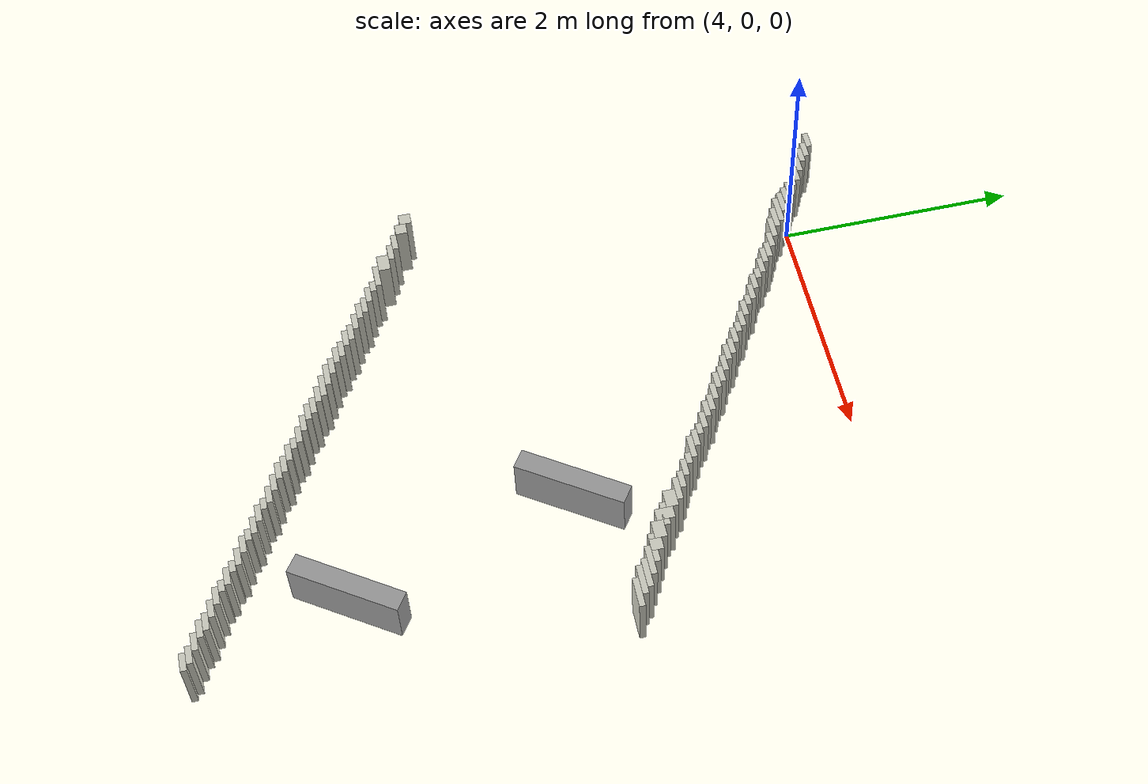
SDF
<sdf version="1.7">
 <world name="my_map_world">
  <model name="wall_92">
   <static>1</static>
   <pose>3.375 0.325 0.25 0 -0 0</pose>
   <link name="link">
    <collision name="collision"><geometry><box><size>0.15 0.05 0.5</size></box></geometry></collision>
    <visual name="visual">
     <geometry><box><size>0.15 0.05 0.5</size></box></geometry>
     <material>
      <script><uri>file://media/materials/scripts/gazebo.material</uri><name>Gazebo/PaintedWall</name></script>
     </material>
    </visual>
   </link>
  </model>
  <model name="wall_94">
   <static>1</static>
   <pose>3.475 0.275 0.25 0 -0 0</pose>
   <link name="link">
    <collision name="collision"><geometry><box><size>0.15 0.05 0.5</size></box></geometry></collision>
    <visual name="visual">
     <geometry><box><size>0.15 0.05 0.5</size></box></geometry>
     <material>
      <script><uri>file://media/materials/scripts/gazebo.material</uri><name>Gazebo/PaintedWall</name></script>
     </material>
    </visual>
   </link>
  </model>
  <model name="wall_96">
   <static>1</static>
   <pose>3.525 0.225 0.25 0 -0 0</pose>
   <link name="link">
    <collision name="collision"><geometry><box><size>0.15 0.05 0.5</size></box></geometry></collision>
    <visual name="visual">
     <geometry><box><size>0.15 0.05 0.5</size></box></geometry>
     <material>
      <script><uri>file://media/materials/scripts/gazebo.material</uri><name>Gazebo/PaintedWall</name></script>
     </material>
    </visual>
   </link>
  </model>
  <model name="wall_99">
   <static>1</static>
   <pose>3.625 0.175 0.25 0 -0 0</pose>
   <link name="link">
    <collision name="collision"><geometry><box><size>0.15 0.05 0.5</size></box></geometry></collision>
    <visual name="visual">
     <geometry><box><size>0.15 0.05 0.5</size></box></geometry>
     <material>
      <script><uri>file://media/materials/scripts/gazebo.material</uri><name>Gazebo/PaintedWall</name></script>
     </material>
    </visual>
   </link>
  </model>
  <model name="wall_101">
   <static>1</static>
   <pose>3.725 0.125 0.25 0 -0 0</pose>
   <link name="link">
    <collision name="collision"><geometry><box><size>0.15 0.05 0.5</size></box></geometry></collision>
    <visual name="visual">
     <geometry><box><size>0.15 0.05 0.5</size></box></geometry>
     <material>
      <script><uri>file://media/materials/scripts/gazebo.material</uri><name>Gazebo/PaintedWall</name></script>
     </material>
    </visual>
   </link>
  </model>
  <model name="wall_103">
   <static>1</static>
   <pose>3.8 0.075 0.25 0 -0 0</pose>
   <link name="link">
    <collision name="collision"><geometry><box><size>0.1 0.05 0.5</size></box></geometry></collision>
    <visual name="visual">
     <geometry><box><size>0.1 0.05 0.5</size></box></geometry>
     <material>
      <script><uri>file://media/materials/scripts/gazebo.material</uri><name>Gazebo/PaintedWall</name></script>
     </material>
    </visual>
   </link>
  </model>
  <model name="wall_106">
   <static>1</static>
   <pose>3.875 0.025 0.25 0 -0 0</pose>
   <link name="link">
    <collision name="collision"><geometry><box><size>0.15 0.05 0.5</size></box></geometry></collision>
    <visual name="visual">
     <geometry><box><size>0.15 0.05 0.5</size></box></geometry>
     <material>
      <script><uri>file://media/materials/scripts/gazebo.material</uri><name>Gazebo/PaintedWall</name></script>
     </material>
    </visual>
   </link>
  </model>
  <model name="wall_109">
   <static>1</static>
   <pose>3.925 -0.025 0.25 0 -0 0</pose>
   <link name="link">
    <collision name="collision"><geometry><box><size>0.15 0.05 0.5</size></box></geometry></collision>
    <visual name="visual">
     <geometry><box><size>0.15 0.05 0.5</size></box></geometry>
     <material>
      <script><uri>file://media/materials/scripts/gazebo.material</uri><name>Gazebo/PaintedWall</name></script>
     </material>
    </visual>
   </link>
  </model>
  <model name="wall_112">
   <static>1</static>
   <pose>4 -0.075 0.25 0 -0 0</pose>
   <link name="link">
    <collision name="collision"><geometry><box><size>0.2 0.05 0.5</size></box></geometry></collision>
    <visual name="visual">
     <geometry><box><size>0.2 0.05 0.5</size></box></geometry>
     <material>
      <script><uri>file://media/materials/scripts/gazebo.material</uri><name>Gazebo/PaintedWall</name></script>
     </material>
    </visual>
   </link>
  </model>
  <model name="wall_115">
   <static>1</static>
   <pose>4.075 -0.125 0.25 0 -0 0</pose>
   <link name="link">
    <collision name="collision"><geometry><box><size>0.25 0.05 0.5</size></box></geometry></collision>
    <visual name="visual">
     <geometry><box><size>0.25 0.05 0.5</size></box></geometry>
     <material>
      <script><uri>file://media/materials/scripts/gazebo.material</uri><name>Gazebo/PaintedWall</name></script>
     </material>
    </visual>
   </link>
  </model>
  <model name="wall_118">
   <static>1</static>
   <pose>4.15 -0.175 0.25 0 -0 0</pose>
   <link name="link">
    <collision name="collision"><geometry><box><size>0.2 0.05 0.5</size></box></geometry></collision>
    <visual name="visual">
     <geometry><box><size>0.2 0.05 0.5</size></box></geometry>
     <material>
      <script><uri>file://media/materials/scripts/gazebo.material</uri><name>Gazebo/PaintedWall</name></script>
     </material>
    </visual>
   </link>
  </model>
  <model name="wall_121">
   <static>1</static>
   <pose>4.25 -0.225 0.25 0 -0 0</pose>
   <link name="link">
    <collision name="collision"><geometry><box><size>0.2 0.05 0.5</size></box></geometry></collision>
    <visual name="visual">
     <geometry><box><size>0.2 0.05 0.5</size></box></geometry>
     <material>
      <script><uri>file://media/materials/scripts/gazebo.material</uri><name>Gazebo/PaintedWall</name></script>
     </material>
    </visual>
   </link>
  </model>
  <model name="wall_123">
   <static>1</static>
   <pose>4.375 -0.275 0.25 0 -0 0</pose>
   <link name="link">
    <collision name="collision"><geometry><box><size>0.15 0.05 0.5</size></box></geometry></collision>
    <visual name="visual">
     <geometry><box><size>0.15 0.05 0.5</size></box></geometry>
     <material>
      <script><uri>file://media/materials/scripts/gazebo.material</uri><name>Gazebo/PaintedWall</name></script>
     </material>
    </visual>
   </link>
  </model>
  <model name="wall_125">
   <static>1</static>
   <pose>4.475 -0.325 0.25 0 -0 0</pose>
   <link name="link">
    <collision name="collision"><geometry><box><size>0.15 0.05 0.5</size></box></geometry></collision>
    <visual name="visual">
     <geometry><box><size>0.15 0.05 0.5</size></box></geometry>
     <material>
      <script><uri>file://media/materials/scripts/gazebo.material</uri><name>Gazebo/PaintedWall</name></script>
     </material>
    </visual>
   </link>
  </model>
  <model name="wall_128">
   <static>1</static>
   <pose>4.525 -0.375 0.25 0 -0 0</pose>
   <link name="link">
    <collision name="collision"><geometry><box><size>0.15 0.05 0.5</size></box></geometry></collision>
    <visual name="visual">
     <geometry><box><size>0.15 0.05 0.5</size></box></geometry>
     <material>
      <script><uri>file://media/materials/scripts/gazebo.material</uri><name>Gazebo/PaintedWall</name></script>
     </material>
    </visual>
   </link>
  </model>
  <model name="wall_130">
   <static>1</static>
   <pose>4.625 -0.425 0.25 0 -0 0</pose>
   <link name="link">
    <collision name="collision"><geometry><box><size>0.15 0.05 0.5</size></box></geometry></collision>
    <visual name="visual">
     <geometry><box><size>0.15 0.05 0.5</size></box></geometry>
     <material>
      <script><uri>file://media/materials/scripts/gazebo.material</uri><name>Gazebo/PaintedWall</name></script>
     </material>
    </visual>
   </link>
  </model>
  <model name="wall_132">
   <static>1</static>
   <pose>4.7 -0.475 0.25 0 -0 0</pose>
   <link name="link">
    <collision name="collision"><geometry><box><size>0.1 0.05 0.5</size></box></geometry></collision>
    <visual name="visual">
     <geometry><box><size>0.1 0.05 0.5</size></box></geometry>
     <material>
      <script><uri>file://media/materials/scripts/gazebo.material</uri><name>Gazebo/PaintedWall</name></script>
     </material>
    </visual>
   </link>
  </model>
  <model name="wall_134">
   <static>1</static>
   <pose>4.775 -0.525 0.25 0 -0 0</pose>
   <link name="link">
    <collision name="collision"><geometry><box><size>0.15 0.05 0.5</size></box></geometry></collision>
    <visual name="visual">
     <geometry><box><size>0.15 0.05 0.5</size></box></geometry>
     <material>
      <script><uri>file://media/materials/scripts/gazebo.material</uri><name>Gazebo/PaintedWall</name></script>
     </material>
    </visual>
   </link>
  </model>
  <model name="wall_136">
   <static>1</static>
   <pose>4.875 -0.575 0.25 0 -0 0</pose>
   <link name="link">
    <collision name="collision"><geometry><box><size>0.15 0.05 0.5</size></box></geometry></collision>
    <visual name="visual">
     <geometry><box><size>0.15 0.05 0.5</size></box></geometry>
     <material>
      <script><uri>file://media/materials/scripts/gazebo.material</uri><name>Gazebo/PaintedWall</name></script>
     </material>
    </visual>
   </link>
  </model>
  <model name="wall_138">
   <static>1</static>
   <pose>4.95 -0.625 0.25 0 -0 0</pose>
   <link name="link">
    <collision name="collision"><geometry><box><size>0.1 0.05 0.5</size></box></geometry></collision>
    <visual name="visual">
     <geometry><box><size>0.1 0.05 0.5</size></box></geometry>
     <material>
      <script><uri>file://media/materials/scripts/gazebo.material</uri><name>Gazebo/PaintedWall</name></script>
     </material>
    </visual>
   </link>
  </model>
  <model name="wall_140">
   <static>1</static>
   <pose>5.025 -0.675 0.25 0 -0 0</pose>
   <link name="link">
    <collision name="collision"><geometry><box><size>0.15 0.05 0.5</size></box></geometry></collision>
    <visual name="visual">
     <geometry><box><size>0.15 0.05 0.5</size></box></geometry>
     <material>
      <script><uri>file://media/materials/scripts/gazebo.material</uri><name>Gazebo/PaintedWall</name></script>
     </material>
    </visual>
   </link>
  </model>
  <model name="wall_142">
   <static>1</static>
   <pose>5.125 -0.725 0.25 0 -0 0</pose>
   <link name="link">
    <collision name="collision"><geometry><box><size>0.15 0.05 0.5</size></box></geometry></collision>
    <visual name="visual">
     <geometry><box><size>0.15 0.05 0.5</size></box></geometry>
     <material>
      <script><uri>file://media/materials/scripts/gazebo.material</uri><name>Gazebo/PaintedWall</name></script>
     </material>
    </visual>
   </link>
  </model>
  <model name="wall_144">
   <static>1</static>
   <pose>5.2 -0.775 0.25 0 -0 0</pose>
   <link name="link">
    <collision name="collision"><geometry><box><size>0.1 0.05 0.5</size></box></geometry></collision>
    <visual name="visual">
     <geometry><box><size>0.1 0.05 0.5</size></box></geometry>
     <material>
      <script><uri>file://media/materials/scripts/gazebo.material</uri><name>Gazebo/PaintedWall</name></script>
     </material>
    </visual>
   </link>
  </model>
  <model name="wall_146">
   <static>1</static>
   <pose>5.275 -0.825 0.25 0 -0 0</pose>
   <link name="link">
    <collision name="collision"><geometry><box><size>0.15 0.05 0.5</size></box></geometry></collision>
    <visual name="visual">
     <geometry><box><size>0.15 0.05 0.5</size></box></geometry>
     <material>
      <script><uri>file://media/materials/scripts/gazebo.material</uri><name>Gazebo/PaintedWall</name></script>
     </material>
    </visual>
   </link>
  </model>
  <model name="wall_148">
   <static>1</static>
   <pose>5.375 -0.875 0.25 0 -0 0</pose>
   <link name="link">
    <collision name="collision"><geometry><box><size>0.15 0.05 0.5</size></box></geometry></collision>
    <visual name="visual">
     <geometry><box><size>0.15 0.05 0.5</size></box></geometry>
     <material>
      <script><uri>file://media/materials/scripts/gazebo.material</uri><name>Gazebo/PaintedWall</name></script>
     </material>
    </visual>
   </link>
  </model>
  <model name="wall_150">
   <static>1</static>
   <pose>5.425 -0.925 0.25 0 -0 0</pose>
   <link name="link">
    <collision name="collision"><geometry><box><size>0.15 0.05 0.5</size></box></geometry></collision>
    <visual name="visual">
     <geometry><box><size>0.15 0.05 0.5</size></box></geometry>
     <material>
      <script><uri>file://media/materials/scripts/gazebo.material</uri><name>Gazebo/PaintedWall</name></script>
     </material>
    </visual>
   </link>
  </model>
  <model name="wall_152">
   <static>1</static>
   <pose>5.525 -0.975 0.25 0 -0 0</pose>
   <link name="link">
    <collision name="collision"><geometry><box><size>0.15 0.05 0.5</size></box></geometry></collision>
    <visual name="visual">
     <geometry><box><size>0.15 0.05 0.5</size></box></geometry>
     <material>
      <script><uri>file://media/materials/scripts/gazebo.material</uri><name>Gazebo/PaintedWall</name></script>
     </material>
    </visual>
   </link>
  </model>
  <model name="wall_154">
   <static>1</static>
   <pose>5.625 -1.025 0.25 0 -0 0</pose>
   <link name="link">
    <collision name="collision"><geometry><box><size>0.15 0.05 0.5</size></box></geometry></collision>
    <visual name="visual">
     <geometry><box><size>0.15 0.05 0.5</size></box></geometry>
     <material>
      <script><uri>file://media/materials/scripts/gazebo.material</uri><name>Gazebo/PaintedWall</name></script>
     </material>
    </visual>
   </link>
  </model>
  <model name="wall_156">
   <static>1</static>
   <pose>5.675 -1.075 0.25 0 -0 0</pose>
   <link name="link">
    <collision name="collision"><geometry><box><size>0.15 0.05 0.5</size></box></geometry></collision>
    <visual name="visual">
     <geometry><box><size>0.15 0.05 0.5</size></box></geometry>
     <material>
      <script><uri>file://media/materials/scripts/gazebo.material</uri><name>Gazebo/PaintedWall</name></script>
     </material>
    </visual>
   </link>
  </model>
  <model name="wall_158">
   <static>1</static>
   <pose>5.775 -1.125 0.25 0 -0 0</pose>
   <link name="link">
    <collision name="collision"><geometry><box><size>0.15 0.05 0.5</size></box></geometry></collision>
    <visual name="visual">
     <geometry><box><size>0.15 0.05 0.5</size></box></geometry>
     <material>
      <script><uri>file://media/materials/scripts/gazebo.material</uri><name>Gazebo/PaintedWall</name></script>
     </material>
    </visual>
   </link>
  </model>
  <model name="wall_160">
   <static>1</static>
   <pose>5.875 -1.175 0.25 0 -0 0</pose>
   <link name="link">
    <collision name="collision"><geometry><box><size>0.15 0.05 0.5</size></box></geometry></collision>
    <visual name="visual">
     <geometry><box><size>0.15 0.05 0.5</size></box></geometry>
     <material>
      <script><uri>file://media/materials/scripts/gazebo.material</uri><name>Gazebo/PaintedWall</name></script>
     </material>
    </visual>
   </link>
  </model>
  <model name="wall_162">
   <static>1</static>
   <pose>5.925 -1.225 0.25 0 -0 0</pose>
   <link name="link">
    <collision name="collision"><geometry><box><size>0.15 0.05 0.5</size></box></geometry></collision>
    <visual name="visual">
     <geometry><box><size>0.15 0.05 0.5</size></box></geometry>
     <material>
      <script><uri>file://media/materials/scripts/gazebo.material</uri><name>Gazebo/PaintedWall</name></script>
     </material>
    </visual>
   </link>
  </model>
  <model name="wall_164">
   <static>1</static>
   <pose>6.025 -1.275 0.25 0 -0 0</pose>
   <link name="link">
    <collision name="collision"><geometry><box><size>0.15 0.05 0.5</size></box></geometry></collision>
    <visual name="visual">
     <geometry><box><size>0.15 0.05 0.5</size></box></geometry>
     <material>
      <script><uri>file://media/materials/scripts/gazebo.material</uri><name>Gazebo/PaintedWall</name></script>
     </material>
    </visual>
   </link>
  </model>
  <model name="wall_166">
   <static>1</static>
   <pose>6.1 -1.325 0.25 0 -0 0</pose>
   <link name="link">
    <collision name="collision"><geometry><box><size>0.1 0.05 0.5</size></box></geometry></collision>
    <visual name="visual">
     <geometry><box><size>0.1 0.05 0.5</size></box></geometry>
     <material>
      <script><uri>file://media/materials/scripts/gazebo.material</uri><name>Gazebo/PaintedWall</name></script>
     </material>
    </visual>
   </link>
  </model>
  <model name="wall_168">
   <static>1</static>
   <pose>6.175 -1.375 0.25 0 -0 0</pose>
   <link name="link">
    <collision name="collision"><geometry><box><size>0.15 0.05 0.5</size></box></geometry></collision>
    <visual name="visual">
     <geometry><box><size>0.15 0.05 0.5</size></box></geometry>
     <material>
      <script><uri>file://media/materials/scripts/gazebo.material</uri><name>Gazebo/PaintedWall</name></script>
     </material>
    </visual>
   </link>
  </model>
  <model name="wall_170">
   <static>1</static>
   <pose>6.25 -1.425 0.25 0 -0 0</pose>
   <link name="link">
    <collision name="collision"><geometry><box><size>0.2 0.05 0.5</size></box></geometry></collision>
    <visual name="visual">
     <geometry><box><size>0.2 0.05 0.5</size></box></geometry>
     <material>
      <script><uri>file://media/materials/scripts/gazebo.material</uri><name>Gazebo/PaintedWall</name></script>
     </material>
    </visual>
   </link>
  </model>
  <model name="wall_172">
   <static>1</static>
   <pose>6.35 -1.475 0.25 0 -0 0</pose>
   <link name="link">
    <collision name="collision"><geometry><box><size>0.1 0.05 0.5</size></box></geometry></collision>
    <visual name="visual">
     <geometry><box><size>0.1 0.05 0.5</size></box></geometry>
     <material>
      <script><uri>file://media/materials/scripts/gazebo.material</uri><name>Gazebo/PaintedWall</name></script>
     </material>
    </visual>
   </link>
  </model>
  <model name="wall_174">
   <static>1</static>
   <pose>6.425 -1.525 0.25 0 -0 0</pose>
   <link name="link">
    <collision name="collision"><geometry><box><size>0.15 0.05 0.5</size></box></geometry></collision>
    <visual name="visual">
     <geometry><box><size>0.15 0.05 0.5</size></box></geometry>
     <material>
      <script><uri>file://media/materials/scripts/gazebo.material</uri><name>Gazebo/PaintedWall</name></script>
     </material>
    </visual>
   </link>
  </model>
  <model name="wall_176">
   <static>1</static>
   <pose>6.525 -1.575 0.25 0 -0 0</pose>
   <link name="link">
    <collision name="collision"><geometry><box><size>0.15 0.05 0.5</size></box></geometry></collision>
    <visual name="visual">
     <geometry><box><size>0.15 0.05 0.5</size></box></geometry>
     <material>
      <script><uri>file://media/materials/scripts/gazebo.material</uri><name>Gazebo/PaintedWall</name></script>
     </material>
    </visual>
   </link>
  </model>
  <model name="wall_178">
   <static>1</static>
   <pose>6.6 -1.625 0.25 0 -0 0</pose>
   <link name="link">
    <collision name="collision"><geometry><box><size>0.2 0.05 0.5</size></box></geometry></collision>
    <visual name="visual">
     <geometry><box><size>0.2 0.05 0.5</size></box></geometry>
     <material>
      <script><uri>file://media/materials/scripts/gazebo.material</uri><name>Gazebo/PaintedWall</name></script>
     </material>
    </visual>
   </link>
  </model>
  <model name="wall_180">
   <static>1</static>
   <pose>6.675 -1.7 0.25 0 -0 0</pose>
   <link name="link">
    <collision name="collision"><geometry><box><size>0.15 0.1 0.5</size></box></geometry></collision>
    <visual name="visual">
     <geometry><box><size>0.15 0.1 0.5</size></box></geometry>
     <material>
      <script><uri>file://media/materials/scripts/gazebo.material</uri><name>Gazebo/PaintedWall</name></script>
     </material>
    </visual>
   </link>
  </model>
  <model name="wall_182">
   <static>1</static>
   <pose>6.8 -1.775 0.25 0 -0 0</pose>
   <link name="link">
    <collision name="collision"><geometry><box><size>0.1 0.15 0.5</size></box></geometry></collision>
    <visual name="visual">
     <geometry><box><size>0.1 0.15 0.5</size></box></geometry>
     <material>
      <script><uri>file://media/materials/scripts/gazebo.material</uri><name>Gazebo/PaintedWall</name></script>
     </material>
    </visual>
   </link>
  </model>
  <model name="wall_184">
   <static>1</static>
   <pose>6.8 -1.775 0.25 0 -0 0</pose>
   <link name="link">
    <collision name="collision"><geometry><box><size>0.2 0.05 0.5</size></box></geometry></collision>
    <visual name="visual">
     <geometry><box><size>0.2 0.05 0.5</size></box></geometry>
     <material>
      <script><uri>file://media/materials/scripts/gazebo.material</uri><name>Gazebo/PaintedWall</name></script>
     </material>
    </visual>
   </link>
  </model>
  <model name="wall_185">
   <static>1</static>
   <pose>6.925 -1.85 0.25 0 -0 0</pose>
   <link name="link">
    <collision name="collision"><geometry><box><size>0.15 0.1 0.5</size></box></geometry></collision>
    <visual name="visual">
     <geometry><box><size>0.15 0.1 0.5</size></box></geometry>
     <material>
      <script><uri>file://media/materials/scripts/gazebo.material</uri><name>Gazebo/PaintedWall</name></script>
     </material>
    </visual>
   </link>
  </model>
  <model name="wall_187">
   <static>1</static>
   <pose>7.05 -1.9 0.25 0 -0 0</pose>
   <link name="link">
    <collision name="collision"><geometry><box><size>0.1 0.1 0.5</size></box></geometry></collision>
    <visual name="visual">
     <geometry><box><size>0.1 0.1 0.5</size></box></geometry>
     <material>
      <script><uri>file://media/materials/scripts/gazebo.material</uri><name>Gazebo/PaintedWall</name></script>
     </material>
    </visual>
   </link>
  </model>
  <model name="wall_189">
   <static>1</static>
   <pose>7.075 -1.925 0.25 0 -0 0</pose>
   <link name="link">
    <collision name="collision"><geometry><box><size>0.25 0.05 0.5</size></box></geometry></collision>
    <visual name="visual">
     <geometry><box><size>0.25 0.05 0.5</size></box></geometry>
     <material>
      <script><uri>file://media/materials/scripts/gazebo.material</uri><name>Gazebo/PaintedWall</name></script>
     </material>
    </visual>
   </link>
  </model>
  <model name="wall_191">
   <static>1</static>
   <pose>7.175 -1.975 0.25 0 -0 0</pose>
   <link name="link">
    <collision name="collision"><geometry><box><size>0.25 0.05 0.5</size></box></geometry></collision>
    <visual name="visual">
     <geometry><box><size>0.25 0.05 0.5</size></box></geometry>
     <material>
      <script><uri>file://media/materials/scripts/gazebo.material</uri><name>Gazebo/PaintedWall</name></script>
     </material>
    </visual>
   </link>
  </model>
  <model name="wall_193">
   <static>1</static>
   <pose>7.275 -2.025 0.25 0 -0 0</pose>
   <link name="link">
    <collision name="collision"><geometry><box><size>0.25 0.05 0.5</size></box></geometry></collision>
    <visual name="visual">
     <geometry><box><size>0.25 0.05 0.5</size></box></geometry>
     <material>
      <script><uri>file://media/materials/scripts/gazebo.material</uri><name>Gazebo/PaintedWall</name></script>
     </material>
    </visual>
   </link>
  </model>
  <model name="wall_194">
   <static>1</static>
   <pose>7.325 -2.075 0.25 0 -0 0</pose>
   <link name="link">
    <collision name="collision"><geometry><box><size>0.25 0.05 0.5</size></box></geometry></collision>
    <visual name="visual">
     <geometry><box><size>0.25 0.05 0.5</size></box></geometry>
     <material>
      <script><uri>file://media/materials/scripts/gazebo.material</uri><name>Gazebo/PaintedWall</name></script>
     </material>
    </visual>
   </link>
  </model>
  <model name="wall_196">
   <static>1</static>
   <pose>7.425 -2.125 0.25 0 -0 0</pose>
   <link name="link">
    <collision name="collision"><geometry><box><size>0.25 0.05 0.5</size></box></geometry></collision>
    <visual name="visual">
     <geometry><box><size>0.25 0.05 0.5</size></box></geometry>
     <material>
      <script><uri>file://media/materials/scripts/gazebo.material</uri><name>Gazebo/PaintedWall</name></script>
     </material>
    </visual>
   </link>
  </model>
  <model name="wall_247">
   <static>1</static>
   <pose>3.45 -3.25 0.25 0 -0 0</pose>
   <link name="link">
    <collision name="collision"><geometry><box><size>0.1 0.1 0.5</size></box></geometry></collision>
    <visual name="visual">
     <geometry><box><size>0.1 0.1 0.5</size></box></geometry>
     <material>
      <script><uri>file://media/materials/scripts/gazebo.material</uri><name>Gazebo/PaintedWall</name></script>
     </material>
    </visual>
   </link>
  </model>
  <model name="wall_250">
   <static>1</static>
   <pose>3.55 -3.3 0.25 0 -0 0</pose>
   <link name="link">
    <collision name="collision"><geometry><box><size>0.1 0.1 0.5</size></box></geometry></collision>
    <visual name="visual">
     <geometry><box><size>0.1 0.1 0.5</size></box></geometry>
     <material>
      <script><uri>file://media/materials/scripts/gazebo.material</uri><name>Gazebo/PaintedWall</name></script>
     </material>
    </visual>
   </link>
  </model>
  <model name="wall_255">
   <static>1</static>
   <pose>3.675 -3.375 0.25 0 -0 0</pose>
   <link name="link">
    <collision name="collision"><geometry><box><size>0.15 0.05 0.5</size></box></geometry></collision>
    <visual name="visual">
     <geometry><box><size>0.15 0.05 0.5</size></box></geometry>
     <material>
      <script><uri>file://media/materials/scripts/gazebo.material</uri><name>Gazebo/PaintedWall</name></script>
     </material>
    </visual>
   </link>
  </model>
  <model name="wall_259">
   <static>1</static>
   <pose>3.775 -3.425 0.25 0 -0 0</pose>
   <link name="link">
    <collision name="collision"><geometry><box><size>0.15 0.05 0.5</size></box></geometry></collision>
    <visual name="visual">
     <geometry><box><size>0.15 0.05 0.5</size></box></geometry>
     <material>
      <script><uri>file://media/materials/scripts/gazebo.material</uri><name>Gazebo/PaintedWall</name></script>
     </material>
    </visual>
   </link>
  </model>
  <model name="wall_261">
   <static>1</static>
   <pose>3.875 -3.5 0.25 0 -0 0</pose>
   <link name="link">
    <collision name="collision"><geometry><box><size>0.15 0.1 0.5</size></box></geometry></collision>
    <visual name="visual">
     <geometry><box><size>0.15 0.1 0.5</size></box></geometry>
     <material>
      <script><uri>file://media/materials/scripts/gazebo.material</uri><name>Gazebo/PaintedWall</name></script>
     </material>
    </visual>
   </link>
  </model>
  <model name="wall_266">
   <static>1</static>
   <pose>4 -3.575 0.25 0 -0 0</pose>
   <link name="link">
    <collision name="collision"><geometry><box><size>0.2 0.05 0.5</size></box></geometry></collision>
    <visual name="visual">
     <geometry><box><size>0.2 0.05 0.5</size></box></geometry>
     <material>
      <script><uri>file://media/materials/scripts/gazebo.material</uri><name>Gazebo/PaintedWall</name></script>
     </material>
    </visual>
   </link>
  </model>
  <model name="wall_268">
   <static>1</static>
   <pose>4.1 -3.625 0.25 0 -0 0</pose>
   <link name="link">
    <collision name="collision"><geometry><box><size>0.1 0.05 0.5</size></box></geometry></collision>
    <visual name="visual">
     <geometry><box><size>0.1 0.05 0.5</size></box></geometry>
     <material>
      <script><uri>file://media/materials/scripts/gazebo.material</uri><name>Gazebo/PaintedWall</name></script>
     </material>
    </visual>
   </link>
  </model>
  <model name="wall_271">
   <static>1</static>
   <pose>4.175 -3.675 0.25 0 -0 0</pose>
   <link name="link">
    <collision name="collision"><geometry><box><size>0.15 0.05 0.5</size></box></geometry></collision>
    <visual name="visual">
     <geometry><box><size>0.15 0.05 0.5</size></box></geometry>
     <material>
      <script><uri>file://media/materials/scripts/gazebo.material</uri><name>Gazebo/PaintedWall</name></script>
     </material>
    </visual>
   </link>
  </model>
  <model name="wall_273">
   <static>1</static>
   <pose>4.275 -3.725 0.25 0 -0 0</pose>
   <link name="link">
    <collision name="collision"><geometry><box><size>0.15 0.05 0.5</size></box></geometry></collision>
    <visual name="visual">
     <geometry><box><size>0.15 0.05 0.5</size></box></geometry>
     <material>
      <script><uri>file://media/materials/scripts/gazebo.material</uri><name>Gazebo/PaintedWall</name></script>
     </material>
    </visual>
   </link>
  </model>
  <model name="wall_276">
   <static>1</static>
   <pose>4.325 -3.775 0.25 0 -0 0</pose>
   <link name="link">
    <collision name="collision"><geometry><box><size>0.15 0.05 0.5</size></box></geometry></collision>
    <visual name="visual">
     <geometry><box><size>0.15 0.05 0.5</size></box></geometry>
     <material>
      <script><uri>file://media/materials/scripts/gazebo.material</uri><name>Gazebo/PaintedWall</name></script>
     </material>
    </visual>
   </link>
  </model>
  <model name="wall_278">
   <static>1</static>
   <pose>4.425 -3.825 0.25 0 -0 0</pose>
   <link name="link">
    <collision name="collision"><geometry><box><size>0.15 0.05 0.5</size></box></geometry></collision>
    <visual name="visual">
     <geometry><box><size>0.15 0.05 0.5</size></box></geometry>
     <material>
      <script><uri>file://media/materials/scripts/gazebo.material</uri><name>Gazebo/PaintedWall</name></script>
     </material>
    </visual>
   </link>
  </model>
  <model name="wall_281">
   <static>1</static>
   <pose>4.525 -3.875 0.25 0 -0 0</pose>
   <link name="link">
    <collision name="collision"><geometry><box><size>0.15 0.05 0.5</size></box></geometry></collision>
    <visual name="visual">
     <geometry><box><size>0.15 0.05 0.5</size></box></geometry>
     <material>
      <script><uri>file://media/materials/scripts/gazebo.material</uri><name>Gazebo/PaintedWall</name></script>
     </material>
    </visual>
   </link>
  </model>
  <model name="wall_285">
   <static>1</static>
   <pose>4.575 -3.925 0.25 0 -0 0</pose>
   <link name="link">
    <collision name="collision"><geometry><box><size>0.15 0.05 0.5</size></box></geometry></collision>
    <visual name="visual">
     <geometry><box><size>0.15 0.05 0.5</size></box></geometry>
     <material>
      <script><uri>file://media/materials/scripts/gazebo.material</uri><name>Gazebo/PaintedWall</name></script>
     </material>
    </visual>
   </link>
  </model>
  <model name="wall_287">
   <static>1</static>
   <pose>4.675 -3.975 0.25 0 -0 0</pose>
   <link name="link">
    <collision name="collision"><geometry><box><size>0.15 0.05 0.5</size></box></geometry></collision>
    <visual name="visual">
     <geometry><box><size>0.15 0.05 0.5</size></box></geometry>
     <material>
      <script><uri>file://media/materials/scripts/gazebo.material</uri><name>Gazebo/PaintedWall</name></script>
     </material>
    </visual>
   </link>
  </model>
  <model name="wall_289">
   <static>1</static>
   <pose>4.725 -4.025 0.25 0 -0 0</pose>
   <link name="link">
    <collision name="collision"><geometry><box><size>0.15 0.05 0.5</size></box></geometry></collision>
    <visual name="visual">
     <geometry><box><size>0.15 0.05 0.5</size></box></geometry>
     <material>
      <script><uri>file://media/materials/scripts/gazebo.material</uri><name>Gazebo/PaintedWall</name></script>
     </material>
    </visual>
   </link>
  </model>
  <model name="wall_291">
   <static>1</static>
   <pose>4.825 -4.075 0.25 0 -0 0</pose>
   <link name="link">
    <collision name="collision"><geometry><box><size>0.15 0.05 0.5</size></box></geometry></collision>
    <visual name="visual">
     <geometry><box><size>0.15 0.05 0.5</size></box></geometry>
     <material>
      <script><uri>file://media/materials/scripts/gazebo.material</uri><name>Gazebo/PaintedWall</name></script>
     </material>
    </visual>
   </link>
  </model>
  <model name="wall_293">
   <static>1</static>
   <pose>4.9 -4.125 0.25 0 -0 0</pose>
   <link name="link">
    <collision name="collision"><geometry><box><size>0.2 0.05 0.5</size></box></geometry></collision>
    <visual name="visual">
     <geometry><box><size>0.2 0.05 0.5</size></box></geometry>
     <material>
      <script><uri>file://media/materials/scripts/gazebo.material</uri><name>Gazebo/PaintedWall</name></script>
     </material>
    </visual>
   </link>
  </model>
  <model name="wall_295">
   <static>1</static>
   <pose>5 -4.175 0.25 0 -0 0</pose>
   <link name="link">
    <collision name="collision"><geometry><box><size>0.2 0.05 0.5</size></box></geometry></collision>
    <visual name="visual">
     <geometry><box><size>0.2 0.05 0.5</size></box></geometry>
     <material>
      <script><uri>file://media/materials/scripts/gazebo.material</uri><name>Gazebo/PaintedWall</name></script>
     </material>
    </visual>
   </link>
  </model>
  <model name="wall_298">
   <static>1</static>
   <pose>5.075 -4.225 0.25 0 -0 0</pose>
   <link name="link">
    <collision name="collision"><geometry><box><size>0.15 0.05 0.5</size></box></geometry></collision>
    <visual name="visual">
     <geometry><box><size>0.15 0.05 0.5</size></box></geometry>
     <material>
      <script><uri>file://media/materials/scripts/gazebo.material</uri><name>Gazebo/PaintedWall</name></script>
     </material>
    </visual>
   </link>
  </model>
  <model name="wall_302">
   <static>1</static>
   <pose>5.175 -4.275 0.25 0 -0 0</pose>
   <link name="link">
    <collision name="collision"><geometry><box><size>0.15 0.05 0.5</size></box></geometry></collision>
    <visual name="visual">
     <geometry><box><size>0.15 0.05 0.5</size></box></geometry>
     <material>
      <script><uri>file://media/materials/scripts/gazebo.material</uri><name>Gazebo/PaintedWall</name></script>
     </material>
    </visual>
   </link>
  </model>
  <model name="wall_305">
   <static>1</static>
   <pose>5.225 -4.325 0.25 0 -0 0</pose>
   <link name="link">
    <collision name="collision"><geometry><box><size>0.15 0.05 0.5</size></box></geometry></collision>
    <visual name="visual">
     <geometry><box><size>0.15 0.05 0.5</size></box></geometry>
     <material>
      <script><uri>file://media/materials/scripts/gazebo.material</uri><name>Gazebo/PaintedWall</name></script>
     </material>
    </visual>
   </link>
  </model>
  <model name="wall_309">
   <static>1</static>
   <pose>5.325 -4.375 0.25 0 -0 0</pose>
   <link name="link">
    <collision name="collision"><geometry><box><size>0.15 0.05 0.5</size></box></geometry></collision>
    <visual name="visual">
     <geometry><box><size>0.15 0.05 0.5</size></box></geometry>
     <material>
      <script><uri>file://media/materials/scripts/gazebo.material</uri><name>Gazebo/PaintedWall</name></script>
     </material>
    </visual>
   </link>
  </model>
  <model name="wall_312">
   <static>1</static>
   <pose>5.425 -4.425 0.25 0 -0 0</pose>
   <link name="link">
    <collision name="collision"><geometry><box><size>0.15 0.05 0.5</size></box></geometry></collision>
    <visual name="visual">
     <geometry><box><size>0.15 0.05 0.5</size></box></geometry>
     <material>
      <script><uri>file://media/materials/scripts/gazebo.material</uri><name>Gazebo/PaintedWall</name></script>
     </material>
    </visual>
   </link>
  </model>
  <model name="wall_316">
   <static>1</static>
   <pose>5.5 -4.475 0.25 0 -0 0</pose>
   <link name="link">
    <collision name="collision"><geometry><box><size>0.1 0.05 0.5</size></box></geometry></collision>
    <visual name="visual">
     <geometry><box><size>0.1 0.05 0.5</size></box></geometry>
     <material>
      <script><uri>file://media/materials/scripts/gazebo.material</uri><name>Gazebo/PaintedWall</name></script>
     </material>
    </visual>
   </link>
  </model>
  <model name="wall_320">
   <static>1</static>
   <pose>5.575 -4.525 0.25 0 -0 0</pose>
   <link name="link">
    <collision name="collision"><geometry><box><size>0.15 0.05 0.5</size></box></geometry></collision>
    <visual name="visual">
     <geometry><box><size>0.15 0.05 0.5</size></box></geometry>
     <material>
      <script><uri>file://media/materials/scripts/gazebo.material</uri><name>Gazebo/PaintedWall</name></script>
     </material>
    </visual>
   </link>
  </model>
  <model name="wall_324">
   <static>1</static>
   <pose>5.675 -4.575 0.25 0 -0 0</pose>
   <link name="link">
    <collision name="collision"><geometry><box><size>0.15 0.05 0.5</size></box></geometry></collision>
    <visual name="visual">
     <geometry><box><size>0.15 0.05 0.5</size></box></geometry>
     <material>
      <script><uri>file://media/materials/scripts/gazebo.material</uri><name>Gazebo/PaintedWall</name></script>
     </material>
    </visual>
   </link>
  </model>
  <model name="wall_330">
   <static>1</static>
   <pose>5.725 -4.625 0.25 0 -0 0</pose>
   <link name="link">
    <collision name="collision"><geometry><box><size>0.15 0.05 0.5</size></box></geometry></collision>
    <visual name="visual">
     <geometry><box><size>0.15 0.05 0.5</size></box></geometry>
     <material>
      <script><uri>file://media/materials/scripts/gazebo.material</uri><name>Gazebo/PaintedWall</name></script>
     </material>
    </visual>
   </link>
  </model>
  <model name="wall_335">
   <static>1</static>
   <pose>5.825 -4.675 0.25 0 -0 0</pose>
   <link name="link">
    <collision name="collision"><geometry><box><size>0.15 0.05 0.5</size></box></geometry></collision>
    <visual name="visual">
     <geometry><box><size>0.15 0.05 0.5</size></box></geometry>
     <material>
      <script><uri>file://media/materials/scripts/gazebo.material</uri><name>Gazebo/PaintedWall</name></script>
     </material>
    </visual>
   </link>
  </model>
  <model name="wall_338">
   <static>1</static>
   <pose>5.925 -4.725 0.25 0 -0 0</pose>
   <link name="link">
    <collision name="collision"><geometry><box><size>0.15 0.05 0.5</size></box></geometry></collision>
    <visual name="visual">
     <geometry><box><size>0.15 0.05 0.5</size></box></geometry>
     <material>
      <script><uri>file://media/materials/scripts/gazebo.material</uri><name>Gazebo/PaintedWall</name></script>
     </material>
    </visual>
   </link>
  </model>
  <model name="wall_342">
   <static>1</static>
   <pose>6 -4.775 0.25 0 -0 0</pose>
   <link name="link">
    <collision name="collision"><geometry><box><size>0.1 0.05 0.5</size></box></geometry></collision>
    <visual name="visual">
     <geometry><box><size>0.1 0.05 0.5</size></box></geometry>
     <material>
      <script><uri>file://media/materials/scripts/gazebo.material</uri><name>Gazebo/PaintedWall</name></script>
     </material>
    </visual>
   </link>
  </model>
  <model name="wall_345">
   <static>1</static>
   <pose>6.075 -4.825 0.25 0 -0 0</pose>
   <link name="link">
    <collision name="collision"><geometry><box><size>0.15 0.05 0.5</size></box></geometry></collision>
    <visual name="visual">
     <geometry><box><size>0.15 0.05 0.5</size></box></geometry>
     <material>
      <script><uri>file://media/materials/scripts/gazebo.material</uri><name>Gazebo/PaintedWall</name></script>
     </material>
    </visual>
   </link>
  </model>
  <model name="wall_350">
   <static>1</static>
   <pose>6.175 -4.875 0.25 0 -0 0</pose>
   <link name="link">
    <collision name="collision"><geometry><box><size>0.15 0.05 0.5</size></box></geometry></collision>
    <visual name="visual">
     <geometry><box><size>0.15 0.05 0.5</size></box></geometry>
     <material>
      <script><uri>file://media/materials/scripts/gazebo.material</uri><name>Gazebo/PaintedWall</name></script>
     </material>
    </visual>
   </link>
  </model>
  <model name="wall_354">
   <static>1</static>
   <pose>6.25 -4.925 0.25 0 -0 0</pose>
   <link name="link">
    <collision name="collision"><geometry><box><size>0.1 0.05 0.5</size></box></geometry></collision>
    <visual name="visual">
     <geometry><box><size>0.1 0.05 0.5</size></box></geometry>
     <material>
      <script><uri>file://media/materials/scripts/gazebo.material</uri><name>Gazebo/PaintedWall</name></script>
     </material>
    </visual>
   </link>
  </model>
  <model name="wall_357">
   <static>1</static>
   <pose>6.325 -4.975 0.25 0 -0 0</pose>
   <link name="link">
    <collision name="collision"><geometry><box><size>0.15 0.05 0.5</size></box></geometry></collision>
    <visual name="visual">
     <geometry><box><size>0.15 0.05 0.5</size></box></geometry>
     <material>
      <script><uri>file://media/materials/scripts/gazebo.material</uri><name>Gazebo/PaintedWall</name></script>
     </material>
    </visual>
   </link>
  </model>
  <model name="wall_361">
   <static>1</static>
   <pose>6.425 -5.025 0.25 0 -0 0</pose>
   <link name="link">
    <collision name="collision"><geometry><box><size>0.15 0.05 0.5</size></box></geometry></collision>
    <visual name="visual">
     <geometry><box><size>0.15 0.05 0.5</size></box></geometry>
     <material>
      <script><uri>file://media/materials/scripts/gazebo.material</uri><name>Gazebo/PaintedWall</name></script>
     </material>
    </visual>
   </link>
  </model>
  <model name="wall_364">
   <static>1</static>
   <pose>6.5 -5.075 0.25 0 -0 0</pose>
   <link name="link">
    <collision name="collision"><geometry><box><size>0.1 0.05 0.5</size></box></geometry></collision>
    <visual name="visual">
     <geometry><box><size>0.1 0.05 0.5</size></box></geometry>
     <material>
      <script><uri>file://media/materials/scripts/gazebo.material</uri><name>Gazebo/PaintedWall</name></script>
     </material>
    </visual>
   </link>
  </model>
  <model name="wall_366">
   <static>1</static>
   <pose>6.575 -5.125 0.25 0 -0 0</pose>
   <link name="link">
    <collision name="collision"><geometry><box><size>0.15 0.05 0.5</size></box></geometry></collision>
    <visual name="visual">
     <geometry><box><size>0.15 0.05 0.5</size></box></geometry>
     <material>
      <script><uri>file://media/materials/scripts/gazebo.material</uri><name>Gazebo/PaintedWall</name></script>
     </material>
    </visual>
   </link>
  </model>
  <model name="wall_370">
   <static>1</static>
   <pose>6.65 -5.175 0.25 0 -0 0</pose>
   <link name="link">
    <collision name="collision"><geometry><box><size>0.1 0.05 0.5</size></box></geometry></collision>
    <visual name="visual">
     <geometry><box><size>0.1 0.05 0.5</size></box></geometry>
     <material>
      <script><uri>file://media/materials/scripts/gazebo.material</uri><name>Gazebo/PaintedWall</name></script>
     </material>
    </visual>
   </link>
  </model>
  <model name="wall_373">
   <static>1</static>
   <pose>6.725 -5.225 0.25 0 -0 0</pose>
   <link name="link">
    <collision name="collision"><geometry><box><size>0.15 0.05 0.5</size></box></geometry></collision>
    <visual name="visual">
     <geometry><box><size>0.15 0.05 0.5</size></box></geometry>
     <material>
      <script><uri>file://media/materials/scripts/gazebo.material</uri><name>Gazebo/PaintedWall</name></script>
     </material>
    </visual>
   </link>
  </model>
  <model name="wall_375">
   <static>1</static>
   <pose>6.825 -5.275 0.25 0 -0 0</pose>
   <link name="link">
    <collision name="collision"><geometry><box><size>0.15 0.05 0.5</size></box></geometry></collision>
    <visual name="visual">
     <geometry><box><size>0.15 0.05 0.5</size></box></geometry>
     <material>
      <script><uri>file://media/materials/scripts/gazebo.material</uri><name>Gazebo/PaintedWall</name></script>
     </material>
    </visual>
   </link>
  </model>
  <model name="wall_378">
   <static>1</static>
   <pose>6.925 -5.325 0.25 0 -0 0</pose>
   <link name="link">
    <collision name="collision"><geometry><box><size>0.15 0.05 0.5</size></box></geometry></collision>
    <visual name="visual">
     <geometry><box><size>0.15 0.05 0.5</size></box></geometry>
     <material>
      <script><uri>file://media/materials/scripts/gazebo.material</uri><name>Gazebo/PaintedWall</name></script>
     </material>
    </visual>
   </link>
  </model>
  <model name="wall_382">
   <static>1</static>
   <pose>6.975 -5.375 0.25 0 -0 0</pose>
   <link name="link">
    <collision name="collision"><geometry><box><size>0.15 0.05 0.5</size></box></geometry></collision>
    <visual name="visual">
     <geometry><box><size>0.15 0.05 0.5</size></box></geometry>
     <material>
      <script><uri>file://media/materials/scripts/gazebo.material</uri><name>Gazebo/PaintedWall</name></script>
     </material>
    </visual>
   </link>
  </model>
  <model name="wall_384">
   <static>1</static>
   <pose>7.075 -5.425 0.25 0 -0 0</pose>
   <link name="link">
    <collision name="collision"><geometry><box><size>0.15 0.05 0.5</size></box></geometry></collision>
    <visual name="visual">
     <geometry><box><size>0.15 0.05 0.5</size></box></geometry>
     <material>
      <script><uri>file://media/materials/scripts/gazebo.material</uri><name>Gazebo/PaintedWall</name></script>
     </material>
    </visual>
   </link>
  </model>
  <model name="wall_386">
   <static>1</static>
   <pose>7.175 -5.475 0.25 0 -0 0</pose>
   <link name="link">
    <collision name="collision"><geometry><box><size>0.15 0.05 0.5</size></box></geometry></collision>
    <visual name="visual">
     <geometry><box><size>0.15 0.05 0.5</size></box></geometry>
     <material>
      <script><uri>file://media/materials/scripts/gazebo.material</uri><name>Gazebo/PaintedWall</name></script>
     </material>
    </visual>
   </link>
  </model>
  <model name="wall_389">
   <static>1</static>
   <pose>7.225 -5.525 0.25 0 -0 0</pose>
   <link name="link">
    <collision name="collision"><geometry><box><size>0.15 0.05 0.5</size></box></geometry></collision>
    <visual name="visual">
     <geometry><box><size>0.15 0.05 0.5</size></box></geometry>
     <material>
      <script><uri>file://media/materials/scripts/gazebo.material</uri><name>Gazebo/PaintedWall</name></script>
     </material>
    </visual>
   </link>
  </model>
  <model name="unit_box">
   <pose>6.24649 -2.3861 0.202016 -1e-06 -0 -0.597419</pose>
   <link name="link">
    <inertial>
     <mass>1</mass>
     <inertia>
      <ixx>0.166667</ixx>
      <ixy>0</ixy>
      <ixz>0</ixz>
      <iyy>0.166667</iyy>
      <iyz>0</iyz>
      <izz>0.166667</izz>
     </inertia>
    </inertial>
    <collision name="collision">
     <geometry><box><size>0.167148 0.934115 0.404033</size></box></geometry>
    </collision>
    <visual name="visual">
     <geometry><box><size>0.167148 0.934115 0.404033</size></box></geometry>
     <material>
      <script><name>Gazebo/Grey</name><uri>file://media/materials/scripts/gazebo.material</uri></script>
     </material>
    </visual>
   </link>
  </model>
  <model name="unit_box_clone">
   <pose>6.77772 -4.25703 0.202016 0 -0 -0.597418</pose>
   <link name="link">
    <inertial>
     <mass>1</mass>
     <inertia>
      <ixx>0.166667</ixx>
      <ixy>0</ixy>
      <ixz>0</ixz>
      <iyy>0.166667</iyy>
      <iyz>0</iyz>
      <izz>0.166667</izz>
     </inertia>
    </inertial>
    <collision name="collision">
     <geometry><box><size>0.167148 0.934116 0.404033</size></box></geometry>
    </collision>
    <visual name="visual">
     <geometry><box><size>0.167148 0.934116 0.404033</size></box></geometry>
     <material>
      <script><name>Gazebo/Grey</name><uri>file://media/materials/scripts/gazebo.material</uri></script>
     </material>
    </visual>
   </link>
  </model>
 </world>
</sdf>
